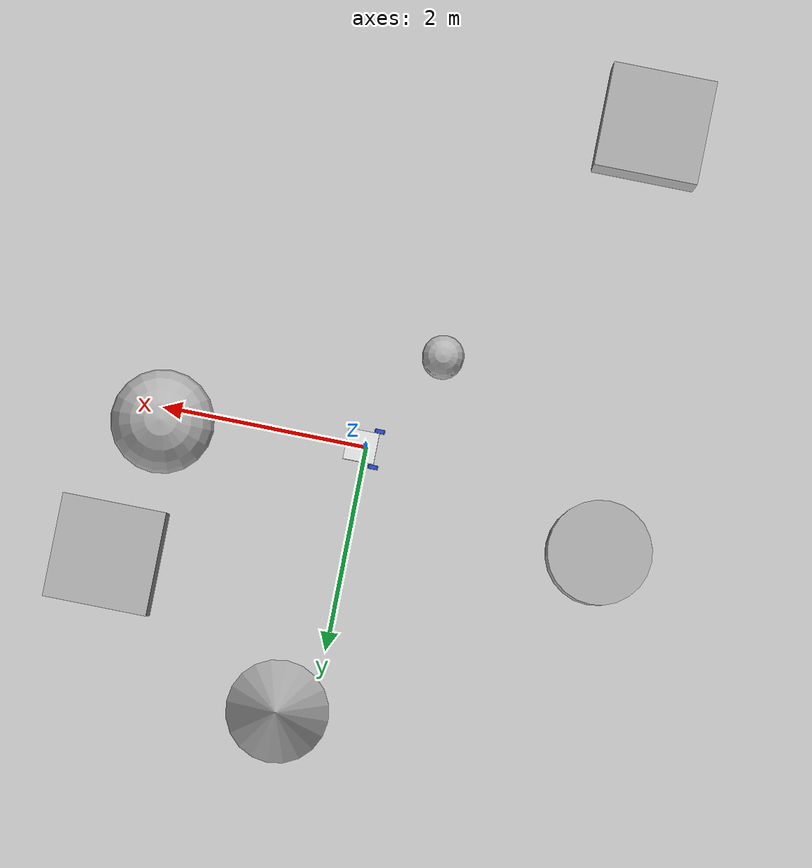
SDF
<sdf version='1.10'>
  <world name='empty'>
    <physics name='1ms' type='ignored'>
      <max_step_size>0.001</max_step_size>
      <real_time_factor>1</real_time_factor>
      <real_time_update_rate>1000</real_time_update_rate>
    </physics>
    <plugin name='gz::sim::systems::Physics' filename='gz-sim-physics-system'/>
    <plugin name='gz::sim::systems::UserCommands' filename='gz-sim-user-commands-system'/>
    <plugin name='gz::sim::systems::SceneBroadcaster' filename='gz-sim-scene-broadcaster-system'/>
    <plugin name='gz::sim::systems::Contact' filename='gz-sim-contact-system'/>
    <gravity>0 0 -9.8000000000000007</gravity>
    <magnetic_field>5.5644999999999998e-06 2.2875799999999999e-05 -4.2388400000000002e-05</magnetic_field>
    <atmosphere type='adiabatic'/>
    <scene>
      <ambient>0.400000006 0.400000006 0.400000006 1</ambient>
      <background>0.699999988 0.699999988 0.699999988 1</background>
      <shadows>true</shadows>
    </scene>
    <model name='ground_plane'>
      <static>true</static>
      <link name='link'>
        <collision name='collision'>
          <geometry>
            <plane>
              <normal>0 0 1</normal>
              <size>100 100</size>
            </plane>
          </geometry>
          <surface>
            <friction>
              <ode/>
            </friction>
            <bounce/>
            <contact/>
          </surface>
        </collision>
        <visual name='visual'>
          <geometry>
            <plane>
              <normal>0 0 1</normal>
              <size>100 100</size>
            </plane>
          </geometry>
          <material>
            <ambient>0.800000012 0.800000012 0.800000012 1</ambient>
            <diffuse>0.800000012 0.800000012 0.800000012 1</diffuse>
            <specular>0.800000012 0.800000012 0.800000012 1</specular>
          </material>
        </visual>
        <pose>0 0 0 0 0 0</pose>
        <inertial>
          <pose>0 0 0 0 0 0</pose>
          <mass>1</mass>
          <inertia>
            <ixx>1</ixx>
            <ixy>0</ixy>
            <ixz>0</ixz>
            <iyy>1</iyy>
            <iyz>0</iyz>
            <izz>1</izz>
          </inertia>
        </inertial>
        <enable_wind>false</enable_wind>
      </link>
      <pose>0 0 0 0 0 0</pose>
      <self_collide>false</self_collide>
    </model>
    <model name='my_bot_ddr'>
      <link name='base_link'>
        <inertial>
          <pose>0.065000000000000002 0 0.0625 0 0 0</pose>
          <mass>0.59999999999999998</mass>
          <inertia>
            <ixx>0.0052562499999999988</ixx>
            <ixy>0</ixy>
            <ixz>0.00056250000000000007</ixz>
            <iyy>0.0059312499999999964</iyy>
            <iyz>0</iyz>
            <izz>0.0082749999999999976</izz>
          </inertia>
        </inertial>
        <collision name='base_link_fixed_joint_lump__chassis_collision'>
          <pose>0.049999999999999989 0 0.074999999999999997 0 0 0</pose>
          <geometry>
            <box>
              <size>0.29999999999999999 0.29999999999999999 0.14999999999999999</size>
            </box>
          </geometry>
          <surface>
            <contact>
              <ode/>
            </contact>
            <friction>
              <ode>
                <mu>0.20000000000000001</mu>
                <mu2>0.20000000000000001</mu2>
              </ode>
            </friction>
            <bounce/>
          </surface>
        </collision>
        <collision name='base_link_fixed_joint_lump__caster_wheel_collision_1'>
          <pose>0.14000000000000001 0 0 0 0 0</pose>
          <geometry>
            <sphere>
              <radius>0.050000000000000003</radius>
            </sphere>
          </geometry>
          <surface>
            <contact>
              <ode/>
            </contact>
            <friction>
              <ode>
                <mu>1.9999999999999999e-06</mu>
                <mu2>1.9999999999999999e-06</mu2>
              </ode>
            </friction>
            <bounce/>
          </surface>
        </collision>
        <visual name='base_link_fixed_joint_lump__chassis_visual'>
          <pose>0.049999999999999989 0 0.074999999999999997 0 0 0</pose>
          <geometry>
            <box>
              <size>0.29999999999999999 0.29999999999999999 0.14999999999999999</size>
            </box>
          </geometry>
          <material>
            <script>
              <name>Gazebo/White</name>
              <uri>file://media/materials/scripts/gazebo.material</uri>
            </script>
            <diffuse>1 1 1 1</diffuse>
            <ambient>1 1 1 1</ambient>
          </material>
        </visual>
        <visual name='base_link_fixed_joint_lump__caster_wheel_visual_1'>
          <pose>0.14000000000000001 0 0 0 0 0</pose>
          <geometry>
            <sphere>
              <radius>0.050000000000000003</radius>
            </sphere>
          </geometry>
          <material>
            <script>
              <name>Gazebo/Black</name>
              <uri>file://media/materials/scripts/gazebo.material</uri>
            </script>
            <diffuse>0 0 0 1</diffuse>
            <ambient>0 0 0 1</ambient>
          </material>
        </visual>
        <pose>0 0 0 0 0 0</pose>
        <enable_wind>false</enable_wind>
      </link>
      <joint name='left_wheel_joint' type='revolute'>
        <pose>0 0 0 0 0 0</pose>
        <parent>base_link</parent>
        <child>left_wheel</child>
        <axis>
          <xyz>0 0 1</xyz>
          <limit>
            <lower>-inf</lower>
            <upper>inf</upper>
            <effort>inf</effort>
            <velocity>inf</velocity>
            <stiffness>100000000</stiffness>
            <dissipation>1</dissipation>
          </limit>
          <dynamics>
            <spring_reference>0</spring_reference>
            <spring_stiffness>0</spring_stiffness>
            <damping>0</damping>
            <friction>0</friction>
          </dynamics>
        </axis>
      </joint>
      <link name='left_wheel'>
        <pose>-0.10000000266237906 0.17499999999999999 4.7837891901242324e-07 -1.5707963267948957 -5.3689877771347314e-08 -6.5109040375273987e-20</pose>
        <inertial>
          <pose>0 0 0 0 0 0</pose>
          <mass>0.10000000000000001</mass>
          <inertia>
            <ixx>7.5833333333333352e-05</ixx>
            <ixy>0</ixy>
            <ixz>0</ixz>
            <iyy>7.5833333333333352e-05</iyy>
            <iyz>0</iyz>
            <izz>0.000125</izz>
          </inertia>
        </inertial>
        <collision name='left_wheel_collision'>
          <pose>0 0 0 0 0 0</pose>
          <geometry>
            <cylinder>
              <length>0.040000000000000001</length>
              <radius>0.050000000000000003</radius>
            </cylinder>
          </geometry>
          <surface>
            <contact>
              <ode/>
            </contact>
            <friction>
              <ode>
                <mu>0.20000000000000001</mu>
                <mu2>0.20000000000000001</mu2>
              </ode>
            </friction>
            <bounce/>
          </surface>
        </collision>
        <visual name='left_wheel_visual'>
          <pose>0 0 0 0 0 0</pose>
          <geometry>
            <cylinder>
              <length>0.040000000000000001</length>
              <radius>0.050000000000000003</radius>
            </cylinder>
          </geometry>
          <material>
            <script>
              <name>Gazebo/Blue</name>
              <uri>file://media/materials/scripts/gazebo.material</uri>
            </script>
            <diffuse>0.25 0.25 1 1</diffuse>
            <ambient>0.25 0.25 1 1</ambient>
          </material>
        </visual>
        <enable_wind>false</enable_wind>
      </link>
      <joint name='right_wheel_joint' type='revolute'>
        <pose>0 0 0 0 0 0</pose>
        <parent>base_link</parent>
        <child>right_wheel</child>
        <axis>
          <xyz>0 0 -1</xyz>
          <limit>
            <lower>-inf</lower>
            <upper>inf</upper>
            <effort>inf</effort>
            <velocity>inf</velocity>
            <stiffness>100000000</stiffness>
            <dissipation>1</dissipation>
          </limit>
          <dynamics>
            <spring_reference>0</spring_reference>
            <spring_stiffness>0</spring_stiffness>
            <damping>0</damping>
            <friction>0</friction>
          </dynamics>
        </axis>
      </joint>
      <link name='right_wheel'>
        <pose>-0.10000000266237906 -0.17499999999999999 4.7837891901242324e-07 1.5707963267948957 -5.3689877771428497e-08 -6.5118966542624623e-20</pose>
        <inertial>
          <pose>0 0 0 0 0 0</pose>
          <mass>0.10000000000000001</mass>
          <inertia>
            <ixx>7.5833333333333352e-05</ixx>
            <ixy>0</ixy>
            <ixz>0</ixz>
            <iyy>7.5833333333333352e-05</iyy>
            <iyz>0</iyz>
            <izz>0.000125</izz>
          </inertia>
        </inertial>
        <collision name='right_wheel_collision'>
          <pose>0 0 0 0 0 0</pose>
          <geometry>
            <cylinder>
              <length>0.040000000000000001</length>
              <radius>0.050000000000000003</radius>
            </cylinder>
          </geometry>
          <surface>
            <contact>
              <ode/>
            </contact>
            <friction>
              <ode>
                <mu>0.20000000000000001</mu>
                <mu2>0.20000000000000001</mu2>
              </ode>
            </friction>
            <bounce/>
          </surface>
        </collision>
        <visual name='right_wheel_visual'>
          <pose>0 0 0 0 0 0</pose>
          <geometry>
            <cylinder>
              <length>0.040000000000000001</length>
              <radius>0.050000000000000003</radius>
            </cylinder>
          </geometry>
          <material>
            <script>
              <name>Gazebo/Blue</name>
              <uri>file://media/materials/scripts/gazebo.material</uri>
            </script>
            <diffuse>0.25 0.25 1 1</diffuse>
            <ambient>0.25 0.25 1 1</ambient>
          </material>
        </visual>
        <enable_wind>false</enable_wind>
      </link>
      <plugin name='gz::sim::systems::DiffDrive' filename='gz-sim-diff-drive-system'>
        <right_joint>left_wheel_joint</right_joint>
        <left_joint>right_wheel_joint</left_joint>
        <wheel_separation>0.35</wheel_separation>
        <wheel_diameter>0.1</wheel_diameter>
        <max_linear_acceleration>10</max_linear_acceleration>
        <topic>cmd_vel</topic>
        <tf_topic>/tf</tf_topic>
        <odom_topic>odom</odom_topic>
        <frame_id>odom</frame_id>
        <child_frame_id>base_link</child_frame_id>
        <odom_publisher_frequency>30</odom_publisher_frequency>
      </plugin>
      <plugin name='gz::sim::systems::JointStatePublisher' filename='gz-sim-joint-state-publisher-system'>
        <topic>joint_states</topic>
        <joint_name>left_wheel_joint</joint_name>
        <joint_name>right_wheel_joint</joint_name>
      </plugin>
      <frame name='caster_wheel_joint' attached_to='chassis'>
        <pose>0.23999999999999999 0 0 0 0 0</pose>
      </frame>
      <frame name='caster_wheel' attached_to='caster_wheel_joint'>
        <pose>0 0 0 0 0 0</pose>
      </frame>
      <frame name='chassis_joint' attached_to='base_link'>
        <pose>-0.10000000000000001 0 0 0 0 0</pose>
      </frame>
      <frame name='chassis' attached_to='chassis_joint'>
        <pose>0 0 0 0 0 0</pose>
      </frame>
      <pose>5.8941093375919457e-09 -1.0106470282401025e-17 0.049999117348226929 5.9271780101374641e-17 1.1832773304414146e-07 2.0221651041861993e-17</pose>
      <static>false</static>
      <self_collide>false</self_collide>
    </model>
    <model name='cone'>
      <pose>0.34422744866343929 2.6593403175208885 0.49999999993296756 5.2541471503228405e-17 -7.7132841033694056e-10 -2.8937183272912105e-22</pose>
      <link name='cone_link'>
        <inertial>
          <inertia>
            <ixx>0.074999999999999997</ixx>
            <ixy>0</ixy>
            <ixz>0</ixz>
            <iyy>0.074999999999999997</iyy>
            <iyz>0</iyz>
            <izz>0.074999999999999997</izz>
          </inertia>
          <mass>1</mass>
          <pose>0 0 0 0 0 0</pose>
        </inertial>
        <collision name='cone_collision'>
          <geometry>
            <cone>
              <radius>0.5</radius>
              <length>1</length>
            </cone>
          </geometry>
          <surface>
            <friction>
              <ode/>
            </friction>
            <bounce/>
            <contact/>
          </surface>
        </collision>
        <visual name='cone_visual'>
          <geometry>
            <cone>
              <radius>0.5</radius>
              <length>1</length>
            </cone>
          </geometry>
          <material>
            <ambient>0.300000012 0.300000012 0.300000012 1</ambient>
            <diffuse>0.699999988 0.699999988 0.699999988 1</diffuse>
            <specular>1 1 1 1</specular>
          </material>
        </visual>
        <pose>0 0 0 0 0 0</pose>
        <enable_wind>false</enable_wind>
      </link>
      <static>false</static>
      <self_collide>false</self_collide>
    </model>
    <model name='cylinder'>
      <pose>-2.3741478008491308 0.57073411181729783 0.49999942638036005 -1.4023563894803169e-19 -2.397742192918572e-19 -2.1179744032269392e-20</pose>
      <link name='cylinder_link'>
        <inertial>
          <inertia>
            <ixx>0.14580000000000001</ixx>
            <ixy>0</ixy>
            <ixz>0</ixz>
            <iyy>0.14580000000000001</iyy>
            <iyz>0</iyz>
            <izz>0.125</izz>
          </inertia>
          <mass>1</mass>
          <pose>0 0 0 0 0 0</pose>
        </inertial>
        <collision name='cylinder_collision'>
          <geometry>
            <cylinder>
              <radius>0.5</radius>
              <length>1</length>
            </cylinder>
          </geometry>
          <surface>
            <friction>
              <ode/>
            </friction>
            <bounce/>
            <contact/>
          </surface>
        </collision>
        <visual name='cylinder_visual'>
          <geometry>
            <cylinder>
              <radius>0.5</radius>
              <length>1</length>
            </cylinder>
          </geometry>
          <material>
            <ambient>0.300000012 0.300000012 0.300000012 1</ambient>
            <diffuse>0.699999988 0.699999988 0.699999988 1</diffuse>
            <specular>1 1 1 1</specular>
          </material>
        </visual>
        <pose>0 0 0 0 0 0</pose>
        <enable_wind>false</enable_wind>
      </link>
      <static>false</static>
      <self_collide>false</self_collide>
    </model>
    <model name='capsule'>
      <pose>-0.55501054518684079 -0.97562785197931501 0.499999999902001 0 0 0</pose>
      <link name='capsule_link'>
        <inertial>
          <inertia>
            <ixx>0.074153999999999998</ixx>
            <ixy>0</ixy>
            <ixz>0</ixz>
            <iyy>0.074153999999999998</iyy>
            <iyz>0</iyz>
            <izz>0.018769000000000001</izz>
          </inertia>
          <mass>1</mass>
          <pose>0 0 0 0 0 0</pose>
        </inertial>
        <collision name='capsule_collision'>
          <geometry>
            <capsule>
              <radius>0.20000000000000001</radius>
              <length>0.59999999999999998</length>
            </capsule>
          </geometry>
          <surface>
            <friction>
              <ode/>
            </friction>
            <bounce/>
            <contact/>
          </surface>
        </collision>
        <visual name='capsule_visual'>
          <geometry>
            <capsule>
              <radius>0.20000000000000001</radius>
              <length>0.59999999999999998</length>
            </capsule>
          </geometry>
          <material>
            <ambient>0.300000012 0.300000012 0.300000012 1</ambient>
            <diffuse>0.699999988 0.699999988 0.699999988 1</diffuse>
            <specular>1 1 1 1</specular>
          </material>
        </visual>
        <pose>0 0 0 0 0 0</pose>
        <enable_wind>false</enable_wind>
      </link>
      <static>false</static>
      <self_collide>false</self_collide>
    </model>
    <model name='sphere'>
      <pose>1.955958618036771 0.14957181361840571 0.499999999902001 0 0 0</pose>
      <link name='sphere_link'>
        <inertial>
          <inertia>
            <ixx>0.10000000000000001</ixx>
            <ixy>0</ixy>
            <ixz>0</ixz>
            <iyy>0.10000000000000001</iyy>
            <iyz>0</iyz>
            <izz>0.10000000000000001</izz>
          </inertia>
          <mass>1</mass>
          <pose>0 0 0 0 0 0</pose>
        </inertial>
        <collision name='sphere_collision'>
          <geometry>
            <sphere>
              <radius>0.5</radius>
            </sphere>
          </geometry>
          <surface>
            <friction>
              <ode/>
            </friction>
            <bounce/>
            <contact/>
          </surface>
        </collision>
        <visual name='sphere_visual'>
          <geometry>
            <sphere>
              <radius>0.5</radius>
            </sphere>
          </geometry>
          <material>
            <ambient>0.300000012 0.300000012 0.300000012 1</ambient>
            <diffuse>0.699999988 0.699999988 0.699999988 1</diffuse>
            <specular>1 1 1 1</specular>
          </material>
        </visual>
        <pose>0 0 0 0 0 0</pose>
        <enable_wind>false</enable_wind>
      </link>
      <static>false</static>
      <self_collide>false</self_collide>
    </model>
    <model name='box'>
      <pose>2.2293258165810386 1.5035601231714104 0.49999999990199806 -8.9387997357110183e-22 2.0358842462432641e-22 -5.764668221621625e-23</pose>
      <link name='box_link'>
        <inertial>
          <inertia>
            <ixx>0.16666</ixx>
            <ixy>0</ixy>
            <ixz>0</ixz>
            <iyy>0.16666</iyy>
            <iyz>0</iyz>
            <izz>0.16666</izz>
          </inertia>
          <mass>1</mass>
          <pose>0 0 0 0 0 0</pose>
        </inertial>
        <collision name='box_collision'>
          <geometry>
            <box>
              <size>1 1 1</size>
            </box>
          </geometry>
          <surface>
            <friction>
              <ode/>
            </friction>
            <bounce/>
            <contact/>
          </surface>
        </collision>
        <visual name='box_visual'>
          <geometry>
            <box>
              <size>1 1 1</size>
            </box>
          </geometry>
          <material>
            <ambient>0.300000012 0.300000012 0.300000012 1</ambient>
            <diffuse>0.699999988 0.699999988 0.699999988 1</diffuse>
            <specular>1 1 1 1</specular>
          </material>
        </visual>
        <pose>0 0 0 0 0 0</pose>
        <enable_wind>false</enable_wind>
      </link>
      <static>false</static>
      <self_collide>false</self_collide>
    </model>
    <model name='box_0'>
      <pose>-2.102904571271325 -3.5351763515081487 0.49999999990199806 6.2287739151293738e-22 9.3279666454713669e-22 -3.6315533669320137e-22</pose>
      <link name='box_link'>
        <inertial>
          <inertia>
            <ixx>0.16666</ixx>
            <ixy>0</ixy>
            <ixz>0</ixz>
            <iyy>0.16666</iyy>
            <iyz>0</iyz>
            <izz>0.16666</izz>
          </inertia>
          <mass>1</mass>
          <pose>0 0 0 0 0 0</pose>
        </inertial>
        <collision name='box_collision'>
          <geometry>
            <box>
              <size>1 1 1</size>
            </box>
          </geometry>
          <surface>
            <friction>
              <ode/>
            </friction>
            <bounce/>
            <contact/>
          </surface>
        </collision>
        <visual name='box_visual'>
          <geometry>
            <box>
              <size>1 1 1</size>
            </box>
          </geometry>
          <material>
            <ambient>0.300000012 0.300000012 0.300000012 1</ambient>
            <diffuse>0.699999988 0.699999988 0.699999988 1</diffuse>
            <specular>1 1 1 1</specular>
          </material>
        </visual>
        <pose>0 0 0 0 0 0</pose>
        <enable_wind>false</enable_wind>
      </link>
      <static>false</static>
      <self_collide>false</self_collide>
    </model>
    <light name='sun' type='directional'>
      <pose>0 0 10 0 0 0</pose>
      <cast_shadows>true</cast_shadows>
      <intensity>1</intensity>
      <direction>-0.5 0.10000000000000001 -0.90000000000000002</direction>
      <diffuse>0.800000012 0.800000012 0.800000012 1</diffuse>
      <specular>0.200000003 0.200000003 0.200000003 1</specular>
      <attenuation>
        <range>1000</range>
        <linear>0.01</linear>
        <constant>0.90000000000000002</constant>
        <quadratic>0.001</quadratic>
      </attenuation>
      <spot>
        <inner_angle>0</inner_angle>
        <outer_angle>0</outer_angle>
        <falloff>0</falloff>
      </spot>
    </light>
  </world>
</sdf>
